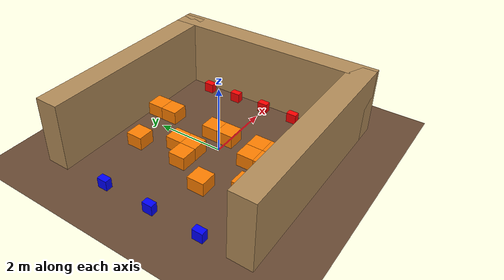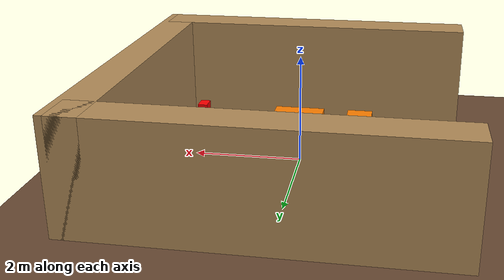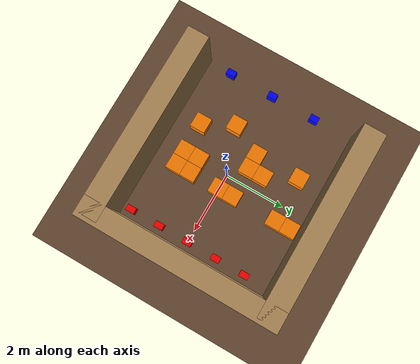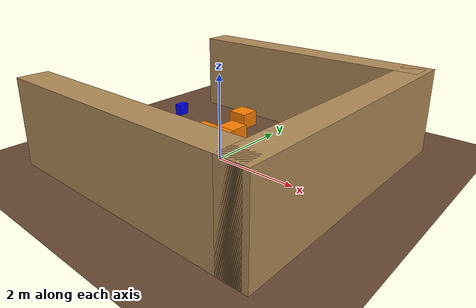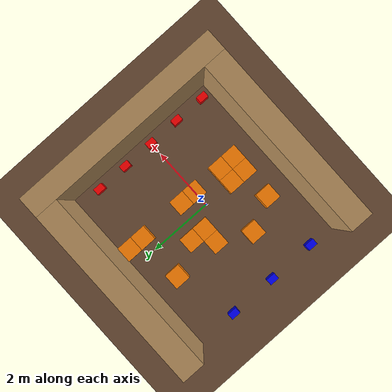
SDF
<?xml version="1.0" ?>
<sdf version="1.9">
  <world name="default">
    <plugin name="ignition::gazebo::systems::Physics" filename="ignition-gazebo-physics-system"/>
    <plugin name="ignition::gazebo::systems::UserCommands" filename="ignition-gazebo-user-commands-system"/>
    <plugin name="ignition::gazebo::systems::SceneBroadcaster" filename="ignition-gazebo-scene-broadcaster-system"/>
    <plugin name="ignition::gazebo::systems::Sensors" filename="ignition-gazebo-sensors-system">
      <render_engine>ogre2</render_engine>
    </plugin>
    <plugin name="ignition::gazebo::systems::Imu" filename="ignition-gazebo-imu-system"/>

    <scene>
  	<ambient>0.8 0.8 0.8 1</ambient>
  	<background>0.8 0.8 0.8 1</background>
   </scene>

   <physics type="ode">
    <real_time_update_rate>1000</real_time_update_rate>
    <max_step_size>0.001</max_step_size>
    <real_time_factor>0.8</real_time_factor>
  </physics>

    <gui fullscreen="0">
      <plugin name="3D View" filename="GzScene3D">
        <background_color>0.8 0.8 0.8 1</background_color>
        <gz-gui>
          <title>3D View</title>
          <property type="string" key="state">docked</property>
        </gz-gui>
        <engine>ogre2</engine>
        <scene>active</scene>
        <camera_pose>-6 0 6 0 0.5 0</camera_pose>
      </plugin>

      <plugin name="Grid config" filename="GridConfig">
        <gz-gui>
          <property type="string" key="state">floating</property>
          <property type="bool" key="visible">false</property>
        </gz-gui>
        <insert>
          <horizontal_cell_count>11</horizontal_cell_count>
          <vertical_cell_count>0</vertical_cell_count>
          <cell_length>0.5</cell_length>
          <color>0 0 0 1</color>
        </insert>
      </plugin>
    </gui>

    <light name="sun" type="directional">
      <pose>0 0 10 0 0 0</pose>
      <cast_shadows>false</cast_shadows>
      <diffuse>0.8 0.8 0.8 1</diffuse>
      <specular>0.2 0.2 0.2 1</specular>
      <direction>0 0 -1</direction>
    </light>

    <model name="ground_plane">
      <static>true</static>
      <link name="link">
        <visual name="visual">
          <geometry><plane><normal>0 0 1</normal><size>6 5.6</size></plane></geometry>
          <material><ambient>0.41 0.29 0.20 1.0</ambient><diffuse>0.41 0.29 0.20 1.0</diffuse></material>
        </visual>
        <collision name="collision">
          <geometry><plane><normal>0 0 1</normal><size>6 5.6</size></plane></geometry>
          <surface>
            <friction>
              <ode>
                <mu>1.0</mu>
                <mu2>1.0</mu2>
              </ode>
            </friction>
          </surface>
        </collision>
      </link>
    </model>

    <model name="wall_north">
      <static>true</static>
      <pose>3 0.25 1 0 0 0</pose>
      <cast_shadows>false</cast_shadows>
      <link name="link">
        <visual name="v"><geometry><box><size>0.65 6.5 2</size></box></geometry><material><ambient>0.7 0.55 0.35 1</ambient><diffuse>0.7 0.55 0.35 1</diffuse></material></visual>
        <collision name="c"><geometry><box><size>0.65 6.5 1.5</size></box></geometry></collision>
      </link>
    </model>

    <model name="wall_east">
      <static>true</static>
      <pose>0.1 3.15 1 0 0 0</pose>
      <cast_shadows>false</cast_shadows>
      <link name="link">
        <visual name="v"><geometry><box><size>6.2 0.7 2</size></box></geometry><material><ambient>0.7 0.55 0.35 1</ambient><diffuse>0.7 0.55 0.35 1</diffuse></material></visual>
        <collision name="c"><geometry><box><size>6.2 0.7 2</size></box></geometry></collision>
      </link>
    </model>

    <model name="wall_west">
      <static>true</static>
      <pose>0.1 -2.65 1 0 0 0</pose>
      <cast_shadows>false</cast_shadows>
      <link name="link">
        <visual name="v"><geometry><box><size>6.2 0.7 2</size></box></geometry><material><ambient>0.7 0.55 0.35 1</ambient><diffuse>0.7 0.55 0.35 1</diffuse></material></visual>
        <collision name="c"><geometry><box><size>6.2 0.7 2</size></box></geometry></collision>
      </link>
    </model>

    <model name="SupplyBox_A">
      <static>true</static>
      <pose>-2.9 -1.5 0.15 0 0 0</pose>
      <cast_shadows>false</cast_shadows>
      <link name="link">

        <visual name="v">
          <geometry><box><size>0.2 0.3 0.3</size></box></geometry><material><ambient>0.0 0.0 1.0 1.0</ambient><diffuse>0.0 0.0 1.0 1.0</diffuse></material>
        </visual>
        <collision name="c"><geometry><box><size>0.2 0.3 0.3</size></box></geometry>
        </collision>
      </link>
    </model>

    <model name="SupplyBox_B">
      <static>true</static>
      <pose>-2.9 0 0.15 0 0 0</pose>
      <cast_shadows>false</cast_shadows>
      <link name="link">
        <visual name="v"><geometry><box><size>0.2 0.3 0.3</size></box></geometry><material><ambient>0.0 0.0 1.0 1.0</ambient><diffuse>0.0 0.0 1.0 1.0</diffuse></material></visual>
        <collision name="c"><geometry><box><size>0.2 0.3 0.3</size></box></geometry></collision>
      </link>
    </model>

    <model name="SupplyBox_C">
      <static>true</static>
      <pose>-2.9 1.5 0.15 0 0 0</pose>
      <cast_shadows>false</cast_shadows>
      <link name="link">
        <visual name="v"><geometry><box><size>0.2 0.3 0.3</size></box></geometry><material><ambient>0.0 0.0 1.0 1.0</ambient><diffuse>0.0 0.0 1.0 1.0</diffuse></material></visual>
        <collision name="c"><geometry><box><size>0.2 0.3 0.3</size></box></geometry></collision>
      </link>
    </model>

    <model name="Obstacle(3,1)">
      <static>true</static>
      <pose>-1 -1.5 0.2 0 0 0</pose>
      <cast_shadows>false</cast_shadows>
      <link name="link">
        <visual name="v"><geometry><box><size>0.5 0.5 0.4</size></box></geometry><material><ambient>1.0 0.5 0.0 1.0</ambient><diffuse>1.0 0.5 0.0 1.0</diffuse></material></visual>
        <collision name="c"><geometry><box><size>0.5 0.5 0.15</size></box></geometry></collision>
      </link>
    </model>

    <model name="Obstacle(5,1)">
      <static>true</static>
      <pose>0 -1.5 0.2 0 0 0</pose>
      <cast_shadows>false</cast_shadows>
      <link name="link">
        <visual name="v"><geometry><box><size>0.5 0.5 0.4</size></box></geometry><material><ambient>1.0 0.5 0.0 1.0</ambient><diffuse>1.0 0.5 0.0 1.0</diffuse></material></visual>
        <collision name="c"><geometry><box><size>0.5 0.5 0.15</size></box></geometry></collision>
      </link>
    </model>

    <model name="Obstacle(5,2)">
      <static>true</static>
      <pose>0 -1 0.2 0 0 0</pose>
      <cast_shadows>false</cast_shadows>
      <link name="link">
        <visual name="v"><geometry><box><size>0.5 0.5 0.4</size></box></geometry><material><ambient>1.0 0.5 0.0 1.0</ambient><diffuse>1.0 0.5 0.0 1.0</diffuse></material></visual>
        <collision name="c"><geometry><box><size>0.5 0.5 0.15</size></box></geometry></collision>
      </link>
    </model>

    <model name="Obstacle(6,1)">
      <static>true</static>
      <pose>0.5 -1.5 0.2 0 0 0</pose>
      <cast_shadows>false</cast_shadows>
      <link name="link">
        <visual name="v"><geometry><box><size>0.5 0.5 0.4</size></box></geometry><material><ambient>1.0 0.5 0.0 1.0</ambient><diffuse>1.0 0.5 0.0 1.0</diffuse></material></visual>
        <collision name="c"><geometry><box><size>0.5 0.5 0.15</size></box></geometry></collision>
      </link>
    </model>

    <model name="Obstacle(6,2)">
      <static>true</static>
      <pose>0.5 -1 0.2 0 0 0</pose>
      <cast_shadows>false</cast_shadows>
      <link name="link">
        <visual name="v"><geometry><box><size>0.5 0.5 0.4</size></box></geometry><material><ambient>1.0 0.5 0.0 1.0</ambient><diffuse>1.0 0.5 0.0 1.0</diffuse></material></visual>
        <collision name="c"><geometry><box><size>0.5 0.5 0.15</size></box></geometry></collision>
      </link>
    </model>

    <model name="Obstacle(2,3)">
      <static>true</static>
      <pose>-1.5 -0.5 0.2 0 0 0</pose>
      <cast_shadows>false</cast_shadows>
      <link name="link">
        <visual name="v"><geometry><box><size>0.5 0.5 0.4</size></box></geometry><material><ambient>1.0 0.5 0.0 1.0</ambient><diffuse>1.0 0.5 0.0 1.0</diffuse></material></visual>
        <collision name="c"><geometry><box><size>0.5 0.5 0.15</size></box></geometry></collision>
      </link>
    </model>

    <model name="Obstacle(6,4)">
      <static>true</static>
      <pose>0.5 0 0.2 0 0 0</pose>
      <cast_shadows>false</cast_shadows>
      <link name="link">
        <visual name="v"><geometry><box><size>0.5 0.5 0.4</size></box></geometry><material><ambient>1.0 0.5 0.0 1.0</ambient><diffuse>1.0 0.5 0.0 1.0</diffuse></material></visual>
        <collision name="c"><geometry><box><size>0.5 0.5 0.15</size></box></geometry></collision>
      </link>
    </model>

    <model name="Obstacle(6,5)">
      <static>true</static>
      <pose>0.5 0.5 0.2 0 0 0</pose>
      <cast_shadows>false</cast_shadows>
      <link name="link">
        <visual name="v"><geometry><box><size>0.5 0.5 0.4</size></box></geometry><material><ambient>1.0 0.5 0.0 1.0</ambient><diffuse>1.0 0.5 0.0 1.0</diffuse></material></visual>
        <collision name="c"><geometry><box><size>0.5 0.5 0.15</size></box></geometry></collision>
      </link>
    </model>

    <model name="Obstacle(3,5)">
      <static>true</static>
      <pose>-1 0.5 0.2 0 0 0</pose>
      <cast_shadows>false</cast_shadows>
      <link name="link">
        <visual name="v"><geometry><box><size>0.5 0.5 0.4</size></box></geometry><material><ambient>1.0 0.5 0.0 1.0</ambient><diffuse>1.0 0.5 0.0 1.0</diffuse></material></visual>
        <collision name="c"><geometry><box><size>0.5 0.5 0.15</size></box></geometry></collision>
      </link>
    </model>

    <model name="Obstacle(4,5)">
      <static>true</static>
      <pose>-0.5 0.5 0.2 0 0 0</pose>
      <cast_shadows>false</cast_shadows>
      <link name="link">
        <visual name="v"><geometry><box><size>0.5 0.5 0.4</size></box></geometry><material><ambient>1.0 0.5 0.0 1.0</ambient><diffuse>1.0 0.5 0.0 1.0</diffuse></material></visual>
        <collision name="c"><geometry><box><size>0.5 0.5 0.15</size></box></geometry></collision>
      </link>
    </model>

    <model name="Obstacle(4,6)">
      <static>true</static>
      <pose>-0.5 1 0.2 0 0 0</pose>
      <cast_shadows>false</cast_shadows>
      <link name="link">
        <visual name="v"><geometry><box><size>0.5 0.5 0.4</size></box></geometry><material><ambient>1.0 0.5 0.0 1.0</ambient><diffuse>1.0 0.5 0.0 1.0</diffuse></material></visual>
        <collision name="c"><geometry><box><size>0.5 0.5 0.15</size></box></geometry></collision>
      </link>
    </model>

    <model name="Obstacle(3,8)">
      <static>true</static>
      <pose>-1 2 0.2 0 0 0</pose>
      <cast_shadows>false</cast_shadows>
      <link name="link">
        <visual name="v"><geometry><box><size>0.5 0.5 0.4</size></box></geometry><material><ambient>1.0 0.5 0.0 1.0</ambient><diffuse>1.0 0.5 0.0 1.0</diffuse></material></visual>
        <collision name="c"><geometry><box><size>0.5 0.5 0.15</size></box></geometry></collision>
      </link>
    </model>

    <model name="Obstacle(6,8)">
      <static>true</static>
      <pose>0.5 2 0.2 0 0 0</pose>
      <cast_shadows>false</cast_shadows>
      <link name="link">
        <visual name="v"><geometry><box><size>0.5 0.5 0.4</size></box></geometry><material><ambient>1.0 0.5 0.0 1.0</ambient><diffuse>1.0 0.5 0.0 1.0</diffuse></material></visual>
        <collision name="c"><geometry><box><size>0.5 0.5 0.15</size></box></geometry></collision>
      </link>
    </model>

    <model name="Obstacle(6,9)">
      <static>true</static>
      <pose>0.5 2.5 0.2 0 0 0</pose>
      <cast_shadows>false</cast_shadows>
      <link name="link">
        <visual name="v"><geometry><box><size>0.5 0.5 0.4</size></box></geometry><material><ambient>1.0 0.5 0.0 1.0</ambient><diffuse>1.0 0.5 0.0 1.0</diffuse></material></visual>
        <collision name="c"><geometry><box><size>0.5 0.5 0.15</size></box></geometry></collision>
      </link>
    </model>

    <model name="Station_5">
      <static>true</static>
      <pose>2.4 -2 0.15 0 0 0</pose>
      <cast_shadows>false</cast_shadows>
      <link name="link">
        <visual name="v"><geometry><box><size>0.2 0.3 0.3</size></box></geometry><material><ambient>1.0 0.0 0.0 1.0</ambient><diffuse>1.0 0.0 0.0 1.0</diffuse></material></visual>
        <collision name="c"><geometry><box><size>0.2 0.3 0.3</size></box></geometry></collision>
      </link>
    </model>

    <model name="Station_4">
      <static>true</static>
      <pose>2.4 -1 0.15 0 0 0</pose>
      <cast_shadows>false</cast_shadows>
      <link name="link">
        <visual name="v"><geometry><box><size>0.2 0.3 0.3</size></box></geometry><material><ambient>1.0 0.0 0.0 1.0</ambient><diffuse>1.0 0.0 0.0 1.0</diffuse></material></visual>
        <collision name="c"><geometry><box><size>0.2 0.3 0.3</size></box></geometry></collision>
      </link>
    </model>

    <model name="Station_3">
      <static>true</static>
      <pose>2.4 0 0.15 0 0 0</pose>
      <cast_shadows>false</cast_shadows>
      <link name="link">
        <visual name="v"><geometry><box><size>0.2 0.3 0.3</size></box></geometry><material><ambient>1.0 0.0 0.0 1.0</ambient><diffuse>1.0 0.0 0.0 1.0</diffuse></material></visual>
        <collision name="c"><geometry><box><size>0.2 0.3 0.3</size></box></geometry></collision>
      </link>
    </model>

    <model name="Station_2">
      <static>true</static>
      <pose>2.4 1 0.15 0 0 0</pose>
      <cast_shadows>false</cast_shadows>
      <link name="link">
        <visual name="v"><geometry><box><size>0.2 0.3 0.3</size></box></geometry><material><ambient>1.0 0.0 0.0 1.0</ambient><diffuse>1.0 0.0 0.0 1.0</diffuse></material></visual>
        <collision name="c"><geometry><box><size>0.2 0.3 0.3</size></box></geometry></collision>
      </link>
    </model>

    <model name="Station_1">
      <static>true</static>
      <pose>2.4 2 0.15 0 0 0</pose>
      <cast_shadows>false</cast_shadows>
      <link name="link">
        <visual name="v"><geometry><box><size>0.2 0.3 0.3</size></box></geometry><material><ambient>1.0 0.0 0.0 1.0</ambient><diffuse>1.0 0.0 0.0 1.0</diffuse></material></visual>
        <collision name="c"><geometry><box><size>0.2 0.3 0.3</size></box></geometry></collision>
      </link>
    </model>

  </world>
</sdf>
